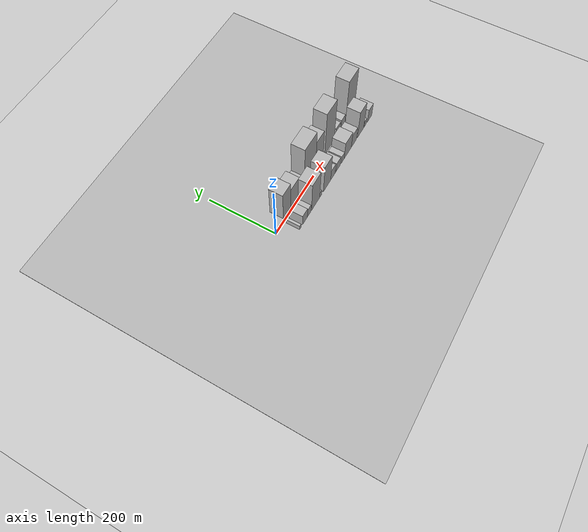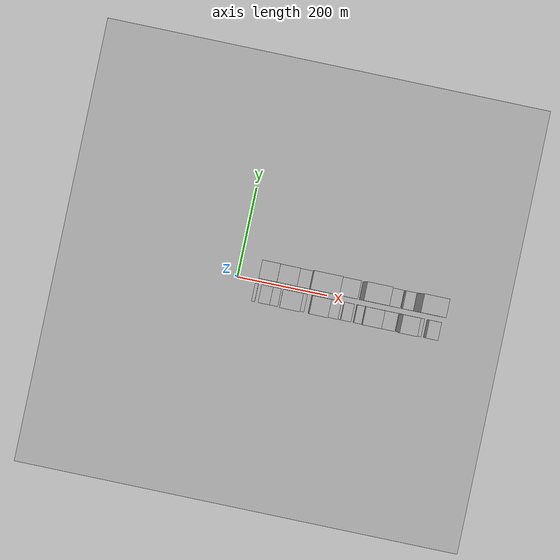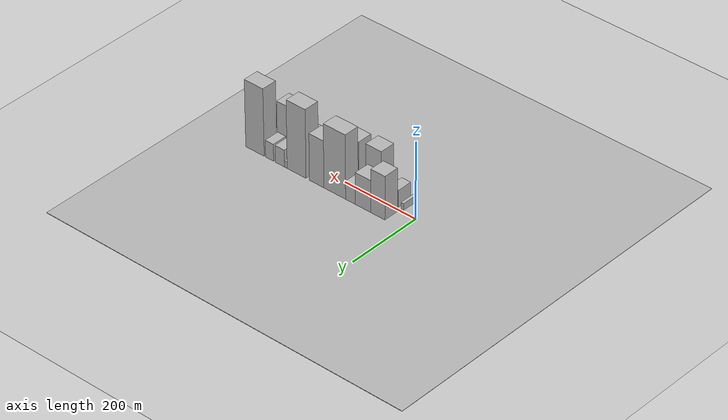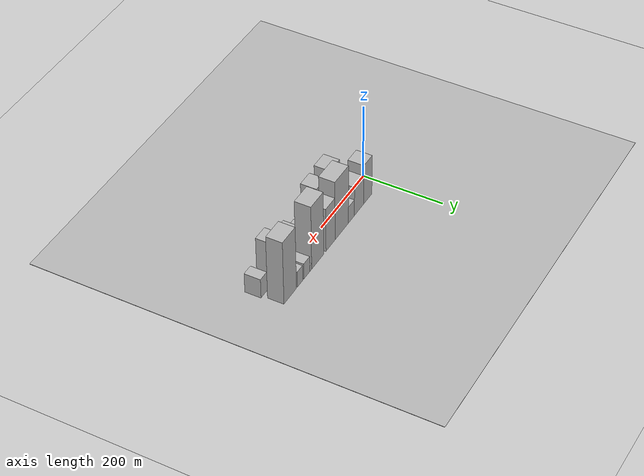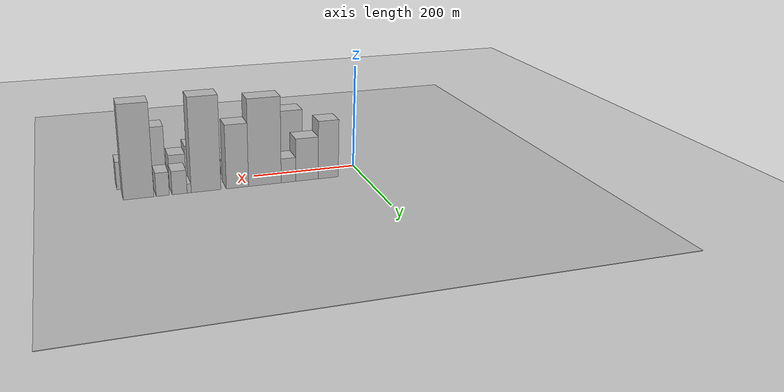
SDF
<?xml version="1.0" encoding="utf-8"?>

<sdf version="1.6">

   <world name="default">

      <gui fullscreen="0">

         <camera name="user_camera">

            <pose>-15 0 4.57585 0 0 0</pose>

            <view_controller>orbit</view_controller>

         </camera>

      </gui>

      <scene>

         <sky>

           <clouds>

             <speed>12</speed>

           </clouds>

         </sky>

         <ambient>0.4 0.4 0.4 1</ambient>

         <background>0.7 0.7 0.7 1</background>

         <shadows>1</shadows>

      </scene>

      <gravity>0 0 -9.8066</gravity>

      <magnetic_field>6e-06 2.3e-05 -4.2e-05</magnetic_field>

      <physics default="0" name="default_physics" type="ode">

         <ode>

            <solver>

               <type>quick</type>

               <iters>10</iters>

               <sor>1.0</sor>

               <use_dynamic_moi_rescaling>0</use_dynamic_moi_rescaling>

            </solver>

            <constraints>

               <cfm>0</cfm>

               <erp>0.2</erp>

               <contact_max_correcting_vel>100</contact_max_correcting_vel>

               <contact_surface_layer>0.001</contact_surface_layer>

            </constraints>

         </ode>

         <max_step_size>0.004</max_step_size>

         <real_time_factor>1</real_time_factor>

         <real_time_update_rate>250</real_time_update_rate>

      </physics>

      <light name="sun" type="directional">

         <cast_shadows>1</cast_shadows>

         <pose>0 0 10 0 0 0</pose>

         <diffuse>0.8 0.8 0.8 1</diffuse>

         <specular>0.2 0.2 0.2 1</specular>

         <attenuation>

            <range>1000</range>

            <constant>0.9</constant>

            <linear>0.01</linear>

            <quadratic>0.001</quadratic>

         </attenuation>

         <direction>-0.5 0.1 -0.9</direction>

      </light>

      <include>

         <name>ground_plane_1</name>

         <uri>model://HANNAS_ground_plane</uri>

         <pose>0 0 0  0 0 0</pose>

      </include>

      <include>

         <name>ground_plane_2</name>

         <uri>model://HANNAS_ground_plane</uri>

         <pose>100 0 0  0 0 0</pose>

      </include>

      <model name="building_1">

         <static>1</static>

         <pose frame="">66.8223 26.0000 0 0.000000 0.000000 1.570796</pose>

         <link name="link">

            <pose frame="">0 0 57.00 0 0 0</pose>

            <collision name="collision">

               <geometry>

                  <box>

                     <size>40.0000 39.6447 114.0000</size>

                  </box>

               </geometry>

               <max_contacts>10</max_contacts>

               <surface>

                  <contact>

                     <ode/>

                  </contact>

                  <bounce/>

                  <friction>

                     <torsional>

                        <ode/>

                     </torsional>

                     <ode/>

                  </friction>

               </surface>

            </collision>

            <visual name="visual">

               <cast_shadows>0</cast_shadows>

               <geometry>

                  <box>

                     <size>40.0000 39.6447 114.0000</size>

                  </box>

               </geometry>

               <material>

                  <script>

                     <uri>model://HANNAS_wall/materials/scripts</uri>

                     <uri>model://HANNAS_wall/materials/textures</uri>

                     <name>vrc/HANNAS_wall</name>

                  </script>

               </material>

            </visual>

            <self_collide>0</self_collide>

            <enable_wind>0</enable_wind>

            <kinematic>0</kinematic>

         </link>

      </model>

      <model name="building_2">

         <static>1</static>

         <pose frame="">108.6687 26.0000 0 0.000000 0.000000 1.570796</pose>

         <link name="link">

            <pose frame="">0 0 42.00 0 0 0</pose>

            <collision name="collision">

               <geometry>

                  <box>

                     <size>40.0000 44.0480 84.0000</size>

                  </box>

               </geometry>

               <max_contacts>10</max_contacts>

               <surface>

                  <contact>

                     <ode/>

                  </contact>

                  <bounce/>

                  <friction>

                     <torsional>

                        <ode/>

                     </torsional>

                     <ode/>

                  </friction>

               </surface>

            </collision>

            <visual name="visual">

               <cast_shadows>0</cast_shadows>

               <geometry>

                  <box>

                     <size>40.0000 44.0480 84.0000</size>

                  </box>

               </geometry>

               <material>

                  <script>

                     <uri>model://HANNAS_wall/materials/scripts</uri>

                     <uri>model://HANNAS_wall/materials/textures</uri>

                     <name>vrc/HANNAS_wall</name>

                  </script>

               </material>

            </visual>

            <self_collide>0</self_collide>

            <enable_wind>0</enable_wind>

            <kinematic>0</kinematic>

         </link>

      </model>

      <model name="building_3">

         <static>1</static>

         <pose frame="">144.6957 26.0000 0 0.000000 0.000000 1.570796</pose>

         <link name="link">

            <pose frame="">0 0 24.00 0 0 0</pose>

            <collision name="collision">

               <geometry>

                  <box>

                     <size>40.0000 28.0060 48.0000</size>

                  </box>

               </geometry>

               <max_contacts>10</max_contacts>

               <surface>

                  <contact>

                     <ode/>

                  </contact>

                  <bounce/>

                  <friction>

                     <torsional>

                        <ode/>

                     </torsional>

                     <ode/>

                  </friction>

               </surface>

            </collision>

            <visual name="visual">

               <cast_shadows>0</cast_shadows>

               <geometry>

                  <box>

                     <size>40.0000 28.0060 48.0000</size>

                  </box>

               </geometry>

               <material>

                  <script>

                     <uri>model://HANNAS_wall/materials/scripts</uri>

                     <uri>model://HANNAS_wall/materials/textures</uri>

                     <name>vrc/HANNAS_wall</name>

                  </script>

               </material>

            </visual>

            <self_collide>0</self_collide>

            <enable_wind>0</enable_wind>

            <kinematic>0</kinematic>

         </link>

      </model>

      <model name="building_4">

         <static>1</static>

         <pose frame="">189.7452 26.0000 0 0.000000 0.000000 1.570796</pose>

         <link name="link">

            <pose frame="">0 0 84.00 0 0 0</pose>

            <collision name="collision">

               <geometry>

                  <box>

                     <size>40.0000 62.0931 168.0000</size>

                  </box>

               </geometry>

               <max_contacts>10</max_contacts>

               <surface>

                  <contact>

                     <ode/>

                  </contact>

                  <bounce/>

                  <friction>

                     <torsional>

                        <ode/>

                     </torsional>

                     <ode/>

                  </friction>

               </surface>

            </collision>

            <visual name="visual">

               <cast_shadows>0</cast_shadows>

               <geometry>

                  <box>

                     <size>40.0000 62.0931 168.0000</size>

                  </box>

               </geometry>

               <material>

                  <script>

                     <uri>model://HANNAS_wall/materials/scripts</uri>

                     <uri>model://HANNAS_wall/materials/textures</uri>

                     <name>vrc/HANNAS_wall</name>

                  </script>

               </material>

            </visual>

            <self_collide>0</self_collide>

            <enable_wind>0</enable_wind>

            <kinematic>0</kinematic>

         </link>

      </model>

      <model name="building_5">

         <static>1</static>

         <pose frame="">241.5375 26.0000 0 0.000000 0.000000 1.570796</pose>

         <link name="link">

            <pose frame="">0 0 61.50 0 0 0</pose>

            <collision name="collision">

               <geometry>

                  <box>

                     <size>40.0000 41.4915 123.0000</size>

                  </box>

               </geometry>

               <max_contacts>10</max_contacts>

               <surface>

                  <contact>

                     <ode/>

                  </contact>

                  <bounce/>

                  <friction>

                     <torsional>

                        <ode/>

                     </torsional>

                     <ode/>

                  </friction>

               </surface>

            </collision>

            <visual name="visual">

               <cast_shadows>0</cast_shadows>

               <geometry>

                  <box>

                     <size>40.0000 41.4915 123.0000</size>

                  </box>

               </geometry>

               <material>

                  <script>

                     <uri>model://HANNAS_wall/materials/scripts</uri>

                     <uri>model://HANNAS_wall/materials/textures</uri>

                     <name>vrc/HANNAS_wall</name>

                  </script>

               </material>

            </visual>

            <self_collide>0</self_collide>

            <enable_wind>0</enable_wind>

            <kinematic>0</kinematic>

         </link>

      </model>

      <model name="building_6">

         <static>1</static>

         <pose frame="">299.5882 26.0000 0 0.000000 0.000000 1.570796</pose>

         <link name="link">

            <pose frame="">0 0 90.00 0 0 0</pose>

            <collision name="collision">

               <geometry>

                  <box>

                     <size>40.0000 54.6101 180.0000</size>

                  </box>

               </geometry>

               <max_contacts>10</max_contacts>

               <surface>

                  <contact>

                     <ode/>

                  </contact>

                  <bounce/>

                  <friction>

                     <torsional>

                        <ode/>

                     </torsional>

                     <ode/>

                  </friction>

               </surface>

            </collision>

            <visual name="visual">

               <cast_shadows>0</cast_shadows>

               <geometry>

                  <box>

                     <size>40.0000 54.6101 180.0000</size>

                  </box>

               </geometry>

               <material>

                  <script>

                     <uri>model://HANNAS_wall/materials/scripts</uri>

                     <uri>model://HANNAS_wall/materials/textures</uri>

                     <name>vrc/HANNAS_wall</name>

                  </script>

               </material>

            </visual>

            <self_collide>0</self_collide>

            <enable_wind>0</enable_wind>

            <kinematic>0</kinematic>

         </link>

      </model>

      <model name="building_7">

         <static>1</static>

         <pose frame="">330.7114 26.0000 0 0.000000 0.000000 1.570796</pose>

         <link name="link">

            <pose frame="">0 0 9.00 0 0 0</pose>

            <collision name="collision">

               <geometry>

                  <box>

                     <size>40.0000 7.6363 18.0000</size>

                  </box>

               </geometry>

               <max_contacts>10</max_contacts>

               <surface>

                  <contact>

                     <ode/>

                  </contact>

                  <bounce/>

                  <friction>

                     <torsional>

                        <ode/>

                     </torsional>

                     <ode/>

                  </friction>

               </surface>

            </collision>

            <visual name="visual">

               <cast_shadows>0</cast_shadows>

               <geometry>

                  <box>

                     <size>40.0000 7.6363 18.0000</size>

                  </box>

               </geometry>

               <material>

                  <script>

                     <uri>model://HANNAS_wall/materials/scripts</uri>

                     <uri>model://HANNAS_wall/materials/textures</uri>

                     <name>vrc/HANNAS_wall</name>

                  </script>

               </material>

            </visual>

            <self_collide>0</self_collide>

            <enable_wind>0</enable_wind>

            <kinematic>0</kinematic>

         </link>

      </model>

      <model name="building_8">

         <static>1</static>

         <pose frame="">347.9633 26.0000 0 0.000000 0.000000 1.570796</pose>

         <link name="link">

            <pose frame="">0 0 22.50 0 0 0</pose>

            <collision name="collision">

               <geometry>

                  <box>

                     <size>40.0000 26.8674 45.0000</size>

                  </box>

               </geometry>

               <max_contacts>10</max_contacts>

               <surface>

                  <contact>

                     <ode/>

                  </contact>

                  <bounce/>

                  <friction>

                     <torsional>

                        <ode/>

                     </torsional>

                     <ode/>

                  </friction>

               </surface>

            </collision>

            <visual name="visual">

               <cast_shadows>0</cast_shadows>

               <geometry>

                  <box>

                     <size>40.0000 26.8674 45.0000</size>

                  </box>

               </geometry>

               <material>

                  <script>

                     <uri>model://HANNAS_wall/materials/scripts</uri>

                     <uri>model://HANNAS_wall/materials/textures</uri>

                     <name>vrc/HANNAS_wall</name>

                  </script>

               </material>

            </visual>

            <self_collide>0</self_collide>

            <enable_wind>0</enable_wind>

            <kinematic>0</kinematic>

         </link>

      </model>

      <model name="building_9">

         <static>1</static>

         <pose frame="">378.2147 26.0000 0 0.000000 0.000000 1.570796</pose>

         <link name="link">

            <pose frame="">0 0 22.50 0 0 0</pose>

            <collision name="collision">

               <geometry>

                  <box>

                     <size>40.0000 23.6355 45.0000</size>

                  </box>

               </geometry>

               <max_contacts>10</max_contacts>

               <surface>

                  <contact>

                     <ode/>

                  </contact>

                  <bounce/>

                  <friction>

                     <torsional>

                        <ode/>

                     </torsional>

                     <ode/>

                  </friction>

               </surface>

            </collision>

            <visual name="visual">

               <cast_shadows>0</cast_shadows>

               <geometry>

                  <box>

                     <size>40.0000 23.6355 45.0000</size>

                  </box>

               </geometry>

               <material>

                  <script>

                     <uri>model://HANNAS_wall/materials/scripts</uri>

                     <uri>model://HANNAS_wall/materials/textures</uri>

                     <name>vrc/HANNAS_wall</name>

                  </script>

               </material>

            </visual>

            <self_collide>0</self_collide>

            <enable_wind>0</enable_wind>

            <kinematic>0</kinematic>

         </link>

      </model>

      <model name="building_10">

         <static>1</static>

         <pose frame="">421.1120 26.0000 0 0.000000 0.000000 1.570796</pose>

         <link name="link">

            <pose frame="">0 0 88.50 0 0 0</pose>

            <collision name="collision">

               <geometry>

                  <box>

                     <size>40.0000 54.1592 177.0000</size>

                  </box>

               </geometry>

               <max_contacts>10</max_contacts>

               <surface>

                  <contact>

                     <ode/>

                  </contact>

                  <bounce/>

                  <friction>

                     <torsional>

                        <ode/>

                     </torsional>

                     <ode/>

                  </friction>

               </surface>

            </collision>

            <visual name="visual">

               <cast_shadows>0</cast_shadows>

               <geometry>

                  <box>

                     <size>40.0000 54.1592 177.0000</size>

                  </box>

               </geometry>

               <material>

                  <script>

                     <uri>model://HANNAS_wall/materials/scripts</uri>

                     <uri>model://HANNAS_wall/materials/textures</uri>

                     <name>vrc/HANNAS_wall</name>

                  </script>

               </material>

            </visual>

            <self_collide>0</self_collide>

            <enable_wind>0</enable_wind>

            <kinematic>0</kinematic>

         </link>

      </model>

      <model name="building_11">

         <static>1</static>

         <pose frame="">43.6693 -26.0000 0 0.000000 0.000000 1.570796</pose>

         <link name="link">

            <pose frame="">0 0 9.00 0 0 0</pose>

            <collision name="collision">

               <geometry>

                  <box>

                     <size>40.0000 7.3385 18.0000</size>

                  </box>

               </geometry>

               <max_contacts>10</max_contacts>

               <surface>

                  <contact>

                     <ode/>

                  </contact>

                  <bounce/>

                  <friction>

                     <torsional>

                        <ode/>

                     </torsional>

                     <ode/>

                  </friction>

               </surface>

            </collision>

            <visual name="visual">

               <cast_shadows>0</cast_shadows>

               <geometry>

                  <box>

                     <size>40.0000 7.3385 18.0000</size>

                  </box>

               </geometry>

               <material>

                  <script>

                     <uri>model://HANNAS_wall/materials/scripts</uri>

                     <uri>model://HANNAS_wall/materials/textures</uri>

                     <name>vrc/HANNAS_wall</name>

                  </script>

               </material>

            </visual>

            <self_collide>0</self_collide>

            <enable_wind>0</enable_wind>

            <kinematic>0</kinematic>

         </link>

      </model>

      <model name="building_12">

         <static>1</static>

         <pose frame="">68.1040 -26.0000 0 0.000000 0.000000 1.570796</pose>

         <link name="link">

            <pose frame="">0 0 22.50 0 0 0</pose>

            <collision name="collision">

               <geometry>

                  <box>

                     <size>40.0000 25.5310 45.0000</size>

                  </box>

               </geometry>

               <max_contacts>10</max_contacts>

               <surface>

                  <contact>

                     <ode/>

                  </contact>

                  <bounce/>

                  <friction>

                     <torsional>

                        <ode/>

                     </torsional>

                     <ode/>

                  </friction>

               </surface>

            </collision>

            <visual name="visual">

               <cast_shadows>0</cast_shadows>

               <geometry>

                  <box>

                     <size>40.0000 25.5310 45.0000</size>

                  </box>

               </geometry>

               <material>

                  <script>

                     <uri>model://HANNAS_wall/materials/scripts</uri>

                     <uri>model://HANNAS_wall/materials/textures</uri>

                     <name>vrc/HANNAS_wall</name>

                  </script>

               </material>

            </visual>

            <self_collide>0</self_collide>

            <enable_wind>0</enable_wind>

            <kinematic>0</kinematic>

         </link>

      </model>

      <model name="building_13">

         <static>1</static>

         <pose frame="">89.9854 -26.0000 0 0.000000 0.000000 1.570796</pose>

         <link name="link">

            <pose frame="">0 0 18.00 0 0 0</pose>

            <collision name="collision">

               <geometry>

                  <box>

                     <size>40.0000 18.2319 36.0000</size>

                  </box>

               </geometry>

               <max_contacts>10</max_contacts>

               <surface>

                  <contact>

                     <ode/>

                  </contact>

                  <bounce/>

                  <friction>

                     <torsional>

                        <ode/>

                     </torsional>

                     <ode/>

                  </friction>

               </surface>

            </collision>

            <visual name="visual">

               <cast_shadows>0</cast_shadows>

               <geometry>

                  <box>

                     <size>40.0000 18.2319 36.0000</size>

                  </box>

               </geometry>

               <material>

                  <script>

                     <uri>model://HANNAS_wall/materials/scripts</uri>

                     <uri>model://HANNAS_wall/materials/textures</uri>

                     <name>vrc/HANNAS_wall</name>

                  </script>

               </material>

            </visual>

            <self_collide>0</self_collide>

            <enable_wind>0</enable_wind>

            <kinematic>0</kinematic>

         </link>

      </model>

      <model name="building_14">

         <static>1</static>

         <pose frame="">125.2123 -26.0000 0 0.000000 0.000000 1.570796</pose>

         <link name="link">

            <pose frame="">0 0 61.50 0 0 0</pose>

            <collision name="collision">

               <geometry>

                  <box>

                     <size>40.0000 44.2219 123.0000</size>

                  </box>

               </geometry>

               <max_contacts>10</max_contacts>

               <surface>

                  <contact>

                     <ode/>

                  </contact>

                  <bounce/>

                  <friction>

                     <torsional>

                        <ode/>

                     </torsional>

                     <ode/>

                  </friction>

               </surface>

            </collision>

            <visual name="visual">

               <cast_shadows>0</cast_shadows>

               <geometry>

                  <box>

                     <size>40.0000 44.2219 123.0000</size>

                  </box>

               </geometry>

               <material>

                  <script>

                     <uri>model://HANNAS_wall/materials/scripts</uri>

                     <uri>model://HANNAS_wall/materials/textures</uri>

                     <name>vrc/HANNAS_wall</name>

                  </script>

               </material>

            </visual>

            <self_collide>0</self_collide>

            <enable_wind>0</enable_wind>

            <kinematic>0</kinematic>

         </link>

      </model>

      <model name="building_15">

         <static>1</static>

         <pose frame="">152.5214 -26.0000 0 0.000000 0.000000 1.570796</pose>

         <link name="link">

            <pose frame="">0 0 12.00 0 0 0</pose>

            <collision name="collision">

               <geometry>

                  <box>

                     <size>40.0000 10.3963 24.0000</size>

                  </box>

               </geometry>

               <max_contacts>10</max_contacts>

               <surface>

                  <contact>

                     <ode/>

                  </contact>

                  <bounce/>

                  <friction>

                     <torsional>

                        <ode/>

                     </torsional>

                     <ode/>

                  </friction>

               </surface>

            </collision>

            <visual name="visual">

               <cast_shadows>0</cast_shadows>

               <geometry>

                  <box>

                     <size>40.0000 10.3963 24.0000</size>

                  </box>

               </geometry>

               <material>

                  <script>

                     <uri>model://HANNAS_wall/materials/scripts</uri>

                     <uri>model://HANNAS_wall/materials/textures</uri>

                     <name>vrc/HANNAS_wall</name>

                  </script>

               </material>

            </visual>

            <self_collide>0</self_collide>

            <enable_wind>0</enable_wind>

            <kinematic>0</kinematic>

         </link>

      </model>

      <model name="building_16">

         <static>1</static>

         <pose frame="">188.0706 -26.0000 0 0.000000 0.000000 1.570796</pose>

         <link name="link">

            <pose frame="">0 0 58.50 0 0 0</pose>

            <collision name="collision">

               <geometry>

                  <box>

                     <size>40.0000 40.7020 117.0000</size>

                  </box>

               </geometry>

               <max_contacts>10</max_contacts>

               <surface>

                  <contact>

                     <ode/>

                  </contact>

                  <bounce/>

                  <friction>

                     <torsional>

                        <ode/>

                     </torsional>

                     <ode/>

                  </friction>

               </surface>

            </collision>

            <visual name="visual">

               <cast_shadows>0</cast_shadows>

               <geometry>

                  <box>

                     <size>40.0000 40.7020 117.0000</size>

                  </box>

               </geometry>

               <material>

                  <script>

                     <uri>model://HANNAS_wall/materials/scripts</uri>

                     <uri>model://HANNAS_wall/materials/textures</uri>

                     <name>vrc/HANNAS_wall</name>

                  </script>

               </material>

            </visual>

            <self_collide>0</self_collide>

            <enable_wind>0</enable_wind>

            <kinematic>0</kinematic>

         </link>

      </model>

      <model name="building_17">

         <static>1</static>

         <pose frame="">220.8014 -26.0000 0 0.000000 0.000000 1.570796</pose>

         <link name="link">

            <pose frame="">0 0 22.50 0 0 0</pose>

            <collision name="collision">

               <geometry>

                  <box>

                     <size>40.0000 24.7597 45.0000</size>

                  </box>

               </geometry>

               <max_contacts>10</max_contacts>

               <surface>

                  <contact>

                     <ode/>

                  </contact>

                  <bounce/>

                  <friction>

                     <torsional>

                        <ode/>

                     </torsional>

                     <ode/>

                  </friction>

               </surface>

            </collision>

            <visual name="visual">

               <cast_shadows>0</cast_shadows>

               <geometry>

                  <box>

                     <size>40.0000 24.7597 45.0000</size>

                  </box>

               </geometry>

               <material>

                  <script>

                     <uri>model://HANNAS_wall/materials/scripts</uri>

                     <uri>model://HANNAS_wall/materials/textures</uri>

                     <name>vrc/HANNAS_wall</name>

                  </script>

               </material>

            </visual>

            <self_collide>0</self_collide>

            <enable_wind>0</enable_wind>

            <kinematic>0</kinematic>

         </link>

      </model>

      <model name="building_18">

         <static>1</static>

         <pose frame="">236.5034 -26.0000 0 0.000000 0.000000 1.570796</pose>

         <link name="link">

            <pose frame="">0 0 7.50 0 0 0</pose>

            <collision name="collision">

               <geometry>

                  <box>

                     <size>40.0000 6.6444 15.0000</size>

                  </box>

               </geometry>

               <max_contacts>10</max_contacts>

               <surface>

                  <contact>

                     <ode/>

                  </contact>

                  <bounce/>

                  <friction>

                     <torsional>

                        <ode/>

                     </torsional>

                     <ode/>

                  </friction>

               </surface>

            </collision>

            <visual name="visual">

               <cast_shadows>0</cast_shadows>

               <geometry>

                  <box>

                     <size>40.0000 6.6444 15.0000</size>

                  </box>

               </geometry>

               <material>

                  <script>

                     <uri>model://HANNAS_wall/materials/scripts</uri>

                     <uri>model://HANNAS_wall/materials/textures</uri>

                     <name>vrc/HANNAS_wall</name>

                  </script>

               </material>

            </visual>

            <self_collide>0</self_collide>

            <enable_wind>0</enable_wind>

            <kinematic>0</kinematic>

         </link>

      </model>

      <model name="building_19">

         <static>1</static>

         <pose frame="">251.0893 -26.0000 0 0.000000 0.000000 1.570796</pose>

         <link name="link">

            <pose frame="">0 0 19.50 0 0 0</pose>

            <collision name="collision">

               <geometry>

                  <box>

                     <size>40.0000 22.5274 39.0000</size>

                  </box>

               </geometry>

               <max_contacts>10</max_contacts>

               <surface>

                  <contact>

                     <ode/>

                  </contact>

                  <bounce/>

                  <friction>

                     <torsional>

                        <ode/>

                     </torsional>

                     <ode/>

                  </friction>

               </surface>

            </collision>

            <visual name="visual">

               <cast_shadows>0</cast_shadows>

               <geometry>

                  <box>

                     <size>40.0000 22.5274 39.0000</size>

                  </box>

               </geometry>

               <material>

                  <script>

                     <uri>model://HANNAS_wall/materials/scripts</uri>

                     <uri>model://HANNAS_wall/materials/textures</uri>

                     <name>vrc/HANNAS_wall</name>

                  </script>

               </material>

            </visual>

            <self_collide>0</self_collide>

            <enable_wind>0</enable_wind>

            <kinematic>0</kinematic>

         </link>

      </model>

      <model name="building_20">

         <static>1</static>

         <pose frame="">277.8937 -26.0000 0 0.000000 0.000000 1.570796</pose>

         <link name="link">

            <pose frame="">0 0 16.50 0 0 0</pose>

            <collision name="collision">

               <geometry>

                  <box>

                     <size>40.0000 17.0815 33.0000</size>

                  </box>

               </geometry>

               <max_contacts>10</max_contacts>

               <surface>

                  <contact>

                     <ode/>

                  </contact>

                  <bounce/>

                  <friction>

                     <torsional>

                        <ode/>

                     </torsional>

                     <ode/>

                  </friction>

               </surface>

            </collision>

            <visual name="visual">

               <cast_shadows>0</cast_shadows>

               <geometry>

                  <box>

                     <size>40.0000 17.0815 33.0000</size>

                  </box>

               </geometry>

               <material>

                  <script>

                     <uri>model://HANNAS_wall/materials/scripts</uri>

                     <uri>model://HANNAS_wall/materials/textures</uri>

                     <name>vrc/HANNAS_wall</name>

                  </script>

               </material>

            </visual>

            <self_collide>0</self_collide>

            <enable_wind>0</enable_wind>

            <kinematic>0</kinematic>

         </link>

      </model>

      <model name="building_21">

         <static>1</static>

         <pose frame="">307.3929 -26.0000 0 0.000000 0.000000 1.570796</pose>

         <link name="link">

            <pose frame="">0 0 36.00 0 0 0</pose>

            <collision name="collision">

               <geometry>

                  <box>

                     <size>40.0000 41.9169 72.0000</size>

                  </box>

               </geometry>

               <max_contacts>10</max_contacts>

               <surface>

                  <contact>

                     <ode/>

                  </contact>

                  <bounce/>

                  <friction>

                     <torsional>

                        <ode/>

                     </torsional>

                     <ode/>

                  </friction>

               </surface>

            </collision>

            <visual name="visual">

               <cast_shadows>0</cast_shadows>

               <geometry>

                  <box>

                     <size>40.0000 41.9169 72.0000</size>

                  </box>

               </geometry>

               <material>

                  <script>

                     <uri>model://HANNAS_wall/materials/scripts</uri>

                     <uri>model://HANNAS_wall/materials/textures</uri>

                     <name>vrc/HANNAS_wall</name>

                  </script>

               </material>

            </visual>

            <self_collide>0</self_collide>

            <enable_wind>0</enable_wind>

            <kinematic>0</kinematic>

         </link>

      </model>

      <model name="building_22">

         <static>1</static>

         <pose frame="">343.6832 -26.0000 0 0.000000 0.000000 1.570796</pose>

         <link name="link">

            <pose frame="">0 0 28.50 0 0 0</pose>

            <collision name="collision">

               <geometry>

                  <box>

                     <size>40.0000 30.6637 57.0000</size>

                  </box>

               </geometry>

               <max_contacts>10</max_contacts>

               <surface>

                  <contact>

                     <ode/>

                  </contact>

                  <bounce/>

                  <friction>

                     <torsional>

                        <ode/>

                     </torsional>

                     <ode/>

                  </friction>

               </surface>

            </collision>

            <visual name="visual">

               <cast_shadows>0</cast_shadows>

               <geometry>

                  <box>

                     <size>40.0000 30.6637 57.0000</size>

                  </box>

               </geometry>

               <material>

                  <script>

                     <uri>model://HANNAS_wall/materials/scripts</uri>

                     <uri>model://HANNAS_wall/materials/textures</uri>

                     <name>vrc/HANNAS_wall</name>

                  </script>

               </material>

            </visual>

            <self_collide>0</self_collide>

            <enable_wind>0</enable_wind>

            <kinematic>0</kinematic>

         </link>

      </model>

      <model name="building_23">

         <static>1</static>

         <pose frame="">384.3029 -26.0000 0 0.000000 0.000000 1.570796</pose>

         <link name="link">

            <pose frame="">0 0 57.00 0 0 0</pose>

            <collision name="collision">

               <geometry>

                  <box>

                     <size>40.0000 38.5756 114.0000</size>

                  </box>

               </geometry>

               <max_contacts>10</max_contacts>

               <surface>

                  <contact>

                     <ode/>

                  </contact>

                  <bounce/>

                  <friction>

                     <torsional>

                        <ode/>

                     </torsional>

                     <ode/>

                  </friction>

               </surface>

            </collision>

            <visual name="visual">

               <cast_shadows>0</cast_shadows>

               <geometry>

                  <box>

                     <size>40.0000 38.5756 114.0000</size>

                  </box>

               </geometry>

               <material>

                  <script>

                     <uri>model://HANNAS_wall/materials/scripts</uri>

                     <uri>model://HANNAS_wall/materials/textures</uri>

                     <name>vrc/HANNAS_wall</name>

                  </script>

               </material>

            </visual>

            <self_collide>0</self_collide>

            <enable_wind>0</enable_wind>

            <kinematic>0</kinematic>

         </link>

      </model>

      <model name="building_24">

         <static>1</static>

         <pose frame="">413.2371 -26.0000 0 0.000000 0.000000 1.570796</pose>

         <link name="link">

            <pose frame="">0 0 13.50 0 0 0</pose>

            <collision name="collision">

               <geometry>

                  <box>

                     <size>40.0000 13.2928 27.0000</size>

                  </box>

               </geometry>

               <max_contacts>10</max_contacts>

               <surface>

                  <contact>

                     <ode/>

                  </contact>

                  <bounce/>

                  <friction>

                     <torsional>

                        <ode/>

                     </torsional>

                     <ode/>

                  </friction>

               </surface>

            </collision>

            <visual name="visual">

               <cast_shadows>0</cast_shadows>

               <geometry>

                  <box>

                     <size>40.0000 13.2928 27.0000</size>

                  </box>

               </geometry>

               <material>

                  <script>

                     <uri>model://HANNAS_wall/materials/scripts</uri>

                     <uri>model://HANNAS_wall/materials/textures</uri>

                     <name>vrc/HANNAS_wall</name>

                  </script>

               </material>

            </visual>

            <self_collide>0</self_collide>

            <enable_wind>0</enable_wind>

            <kinematic>0</kinematic>

         </link>

      </model>

      <model name="building_25">

         <static>1</static>

         <pose frame="">441.4515 -26.0000 0 0.000000 0.000000 1.570796</pose>

         <link name="link">

            <pose frame="">0 0 27.00 0 0 0</pose>

            <collision name="collision">

               <geometry>

                  <box>

                     <size>40.0000 27.1361 54.0000</size>

                  </box>

               </geometry>

               <max_contacts>10</max_contacts>

               <surface>

                  <contact>

                     <ode/>

                  </contact>

                  <bounce/>

                  <friction>

                     <torsional>

                        <ode/>

                     </torsional>

                     <ode/>

                  </friction>

               </surface>

            </collision>

            <visual name="visual">

               <cast_shadows>0</cast_shadows>

               <geometry>

                  <box>

                     <size>40.0000 27.1361 54.0000</size>

                  </box>

               </geometry>

               <material>

                  <script>

                     <uri>model://HANNAS_wall/materials/scripts</uri>

                     <uri>model://HANNAS_wall/materials/textures</uri>

                     <name>vrc/HANNAS_wall</name>

                  </script>

               </material>

            </visual>

            <self_collide>0</self_collide>

            <enable_wind>0</enable_wind>

            <kinematic>0</kinematic>

         </link>

      </model>

   </world>

</sdf>

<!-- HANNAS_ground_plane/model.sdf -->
<sdf version="1.4">
<model name="HANNAS_ground_plane">
  <static>true</static>
    <link name="link">
      <collision name="collision">
        <geometry>
          <plane>
            <normal>0 0 1</normal>
            <size>1000 1000</size>
          </plane>
        </geometry>
        <surface>
          <friction>
            <ode>
              <mu>100</mu>
              <mu2>50</mu2>
            </ode>
          </friction>
        </surface>
      </collision>
      <visual name="visual">
        <cast_shadows>false</cast_shadows>
        <geometry>
          <plane>
            <normal>0 0 1</normal>
            <size>1000 1000</size>
          </plane>
        </geometry>
        <material>
          <script>
            <uri>model://HANNAS_ground_plane/materials/scripts/HANNAS_ground_plane.material</uri>
	    <uri>model://HANNAS_ground_plane/materials/textures</uri>
            <name>HANNASGroundPlane/Image</name>
          </script>
        </material>
      </visual>
    </link>
  </model>
</sdf>
